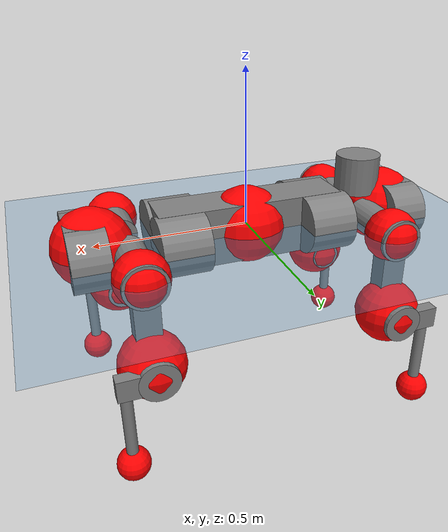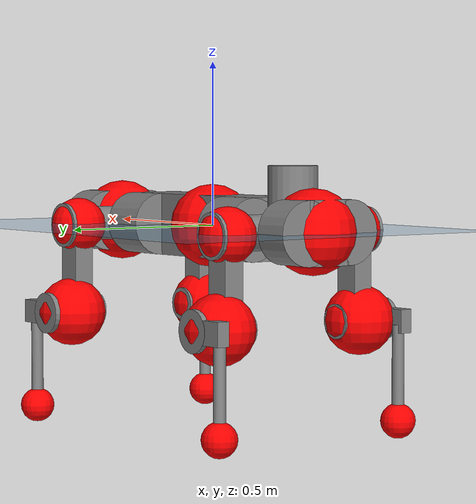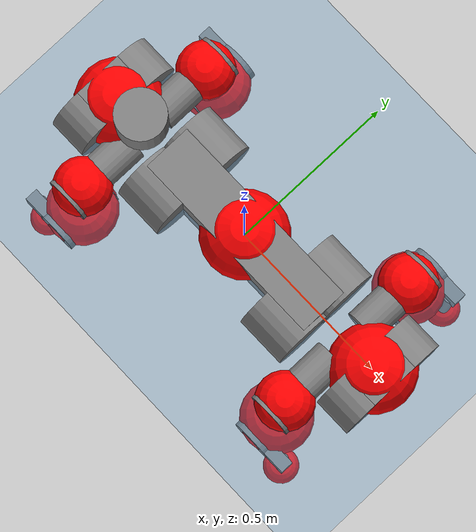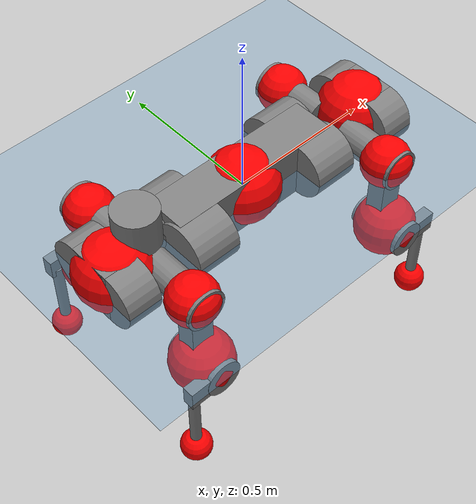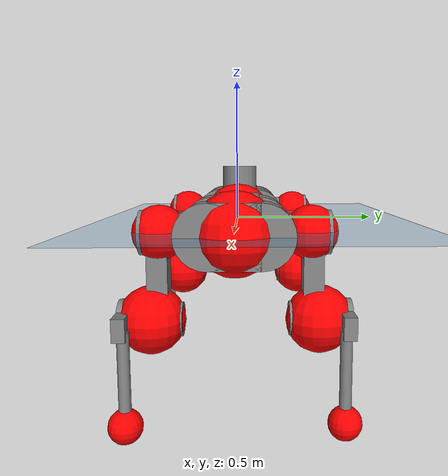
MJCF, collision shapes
<mujoco model="anymal_c">
  <compiler angle="radian" assetdir="assets" balanceinertia="true" inertiafromgeom="false"/>

  <option timestep="0.005" density="1.2" viscosity="2e-05"/>

  <size nkey="1"/>

  <visual>
    <quality shadowsize="8192"/>
    <map shadowclip="0.5"/>
  </visual>

  <default>
    <default class="/">
      <material specular="0" shininess="0.25"/>
      <geom contype="0" conaffinity="0" group="1" solref="-1000 -80"/>
      <site size="0.01 0.005 0.005" group="5"/>
      <general forcelimited="true" forcerange="-80 80" biastype="affine" gainprm="80" biasprm="0 -80 -2"/>
      <default class="anymal_c">
        <joint armature="0.01" damping="0.01" frictionloss="0.1"/>
        <default class="visual">
          <geom type="mesh" group="2"/>
          <default class="visual_zflip"/>
        </default>
        <default class="collision">
          <geom type="cylinder" group="3"/>
          <default class="foot">
            <geom size="0.03 0 0" type="sphere" condim="6" priority="1" friction="0.8 0.02 0.01" solimp="0.015 1 0.03"/>
          </default>
        </default>
      </default>
      <default class="reward_collision_sphere">
        <geom group="5" rgba="1 0 0 1"/>
      </default>
    </default>
  </default>

  <asset>
    <texture type="skybox" colorspace="auto" name="//unnamed_texture_0" builtin="gradient" rgb1="0.95 0.95 0.95" rgb2="0.95 0.95 0.95" width="100" height="600"/>
    <texture type="2d" colorspace="auto" name="texplane" builtin="checker" rgb1="0.345 0.575 0.748" rgb2="0.345 0.575 0.748" markrgb="1 1 1" width="512" height="512"/>
    <texture type="2d" colorspace="linear" name="base" file="base.png"/>
    <texture type="2d" colorspace="linear" name="top_shell" file="top_shell.png"/>
    <texture type="2d" colorspace="linear" name="bottom_shell" file="bottom_shell.png"/>
    <texture type="2d" colorspace="linear" name="remote" file="remote.png"/>
    <texture type="2d" colorspace="linear" name="hatch" file="hatch.png"/>
    <texture type="2d" colorspace="linear" name="handle" file="handle.png"/>
    <texture type="2d" colorspace="linear" name="face" file="face.png"/>
    <texture type="2d" colorspace="linear" name="battery" file="battery.png"/>
    <texture type="2d" colorspace="linear" name="lidar_cage" file="lidar_cage.png"/>
    <texture type="2d" colorspace="linear" name="depth_camera" file="depth_camera.png"/>
    <texture type="2d" colorspace="linear" name="wide_angle_camera" file="wide_angle_camera.png"/>
    <texture type="2d" colorspace="linear" name="lidar" file="lidar.png"/>
    <texture type="2d" colorspace="linear" name="drive" file="drive.png"/>
    <texture type="2d" colorspace="linear" name="hip_l" file="hip_l.png"/>
    <texture type="2d" colorspace="linear" name="shank_l" file="shank_l.png"/>
    <texture type="2d" colorspace="linear" name="foot" file="foot.png"/>
    <texture type="2d" colorspace="linear" name="thigh" file="thigh.png"/>
    <texture type="2d" colorspace="linear" name="shank_r" file="shank_r.png"/>
    <texture type="2d" colorspace="linear" name="hip_r" file="hip_r.png"/>
    <material name="MatPlane" class="/" texture="texplane" texuniform="true" texrepeat="2 2" specular="0.9" shininess="0.5"/>
    <material name="black_plastic" class="/" rgba="0.007 0.007 0.007 1"/>
    <material name="green" class="/" rgba="0.052 0.178 0.033 1"/>
    <material name="red" class="/" rgba="0.178 0.006 0.005 1"/>
    <material name="yellow" class="/" rgba="0.178 0.119 0.006 1"/>
    <material name="lwl" class="/" rgba="0.8 0.8 0.8 1"/>
    <material name="base" class="/" texture="base"/>
    <material name="top_shell" class="/" texture="top_shell"/>
    <material name="bottom_shell" class="/" texture="bottom_shell"/>
    <material name="hip_l" class="/" texture="hip_l"/>
    <material name="thigh" class="/" texture="thigh"/>
    <material name="shank_l" class="/" texture="shank_l"/>
    <material name="foot" class="/" texture="foot"/>
    <material name="hip_r" class="/" texture="hip_r"/>
    <material name="shank" class="/" texture="shank_r"/>
    <material name="hatch" class="/" texture="hatch"/>
    <material name="remote" class="/" texture="remote"/>
    <material name="handle" class="/" texture="handle"/>
    <material name="face" class="/" texture="face"/>
    <material name="depth_camera" class="/" texture="depth_camera"/>
    <material name="wide_angle_camera" class="/" texture="wide_angle_camera"/>
    <material name="battery" class="/" texture="battery"/>
    <material name="lidar_cage" class="/" texture="lidar_cage"/>
    <material name="lidar" class="/" texture="lidar"/>
    <material name="drive" class="/" texture="drive"/>
    <mesh name="base_0" class="/" file="base_0.obj"/>
    <mesh name="base_1" class="/" file="base_1.obj"/>
    <mesh name="base_2" class="/" file="base_2.obj"/>
    <mesh name="base_3" class="/" file="base_3.obj"/>
    <mesh name="base_4" class="/" file="base_4.obj"/>
    <mesh name="base_5" class="/" file="base_5.obj"/>
    <mesh name="top_shell" class="/" file="top_shell.obj"/>
    <mesh name="bottom_shell" class="/" file="bottom_shell.obj"/>
    <mesh name="remote" class="/" file="remote.obj"/>
    <mesh name="handle" class="/" file="handle.obj"/>
    <mesh name="face" class="/" file="face.obj"/>
    <mesh name="wide_angle_camera" class="/" file="wide_angle_camera.obj"/>
    <mesh name="depth_camera" class="/" file="depth_camera.obj"/>
    <mesh name="battery" class="/" file="battery.obj"/>
    <mesh name="lidar_cage" class="/" file="lidar_cage.obj"/>
    <mesh name="lidar" class="/" file="lidar.obj"/>
    <mesh name="drive" class="/" file="drive.obj"/>
    <mesh name="hip_l" class="/" file="hip_l.obj"/>
    <mesh name="thigh" class="/" file="thigh.obj"/>
    <mesh name="shank_l" class="/" file="shank_l.obj"/>
    <mesh name="foot" class="/" file="foot.obj"/>
    <mesh name="hip_r" class="/" file="hip_r.obj"/>
    <mesh name="hatch" class="/" file="hatch.obj"/>
    <mesh name="shank_r" class="/" file="shank_r.obj"/>
  </asset>

  <worldbody>
    <geom name="floor" class="/" size="100 100 0.125" type="plane" group="0" material="MatPlane"/>
    <light name="toplight_shadow" class="/" pos="0 0 5" dir="0.0990148 0.0990148 -0.990148" type="directional" ambient="0.04 0.04 0.04" diffuse="0.55 0.55 0.55" specular="0.12 0.12 0.12"/>
    <light name="toplight_fill" class="/" pos="0 0 5" dir="0.0990148 0.0990148 -0.990148" type="directional" castshadow="false" ambient="0.04 0.04 0.04" diffuse="0.3 0.3 0.3" specular="0.08 0.08 0.08"/>
    <body name="trunk" childclass="anymal_c" pos="-0.000728236 0.00268947 8.8256e-05" quat="0.999999 0.000129705 0.000647231 0.000906445">
      <inertial pos="0.00239963 -0.0012869 0.0476478" quat="0.498133 0.506302 0.503975 0.491458" mass="23.123" diaginertia="1.08444 1.04672 0.166001"/>
      <joint name="//unnamed_joint_0" type="free" armature="0" damping="0" frictionloss="0"/>
      <geom name="//unnamed_geom_1" class="visual" material="green" mesh="base_0"/>
      <geom name="//unnamed_geom_2" class="visual" material="yellow" mesh="base_1"/>
      <geom name="//unnamed_geom_3" class="visual" material="red" mesh="base_2"/>
      <geom name="//unnamed_geom_4" class="visual" material="black_plastic" mesh="base_3"/>
      <geom name="//unnamed_geom_5" class="visual" material="lwl" mesh="base_4"/>
      <geom name="//unnamed_geom_6" class="visual" material="base" mesh="base_5"/>
      <geom name="trunk_1" class="collision" size="0.306151 0.0738986 0.0950125" type="box"/>
      <geom name="trunk_2" class="collision" size="0.0950125 0.0765378" pos="0.242154 0.0773247 0" quat="0.707107 0 0.707107 0"/>
      <geom name="trunk_3" class="collision" size="0.0950125 0.0765378" pos="-0.242154 0.0773247 0" quat="0.707107 0 0.707107 0"/>
      <geom name="trunk_4" class="collision" size="0.0950125 0.0765378" pos="0.242154 -0.0773247 0" quat="0.707107 0 0.707107 0"/>
      <geom name="trunk_5" class="collision" size="0.0950125 0.0765378" pos="-0.242154 -0.0773247 0" quat="0.707107 0 0.707107 0"/>
      <geom name="//unnamed_geom_12" class="visual" material="top_shell" mesh="top_shell"/>
      <geom name="//unnamed_geom_13" class="visual" material="bottom_shell" mesh="bottom_shell"/>
      <geom name="//unnamed_geom_14" class="visual" material="remote" mesh="remote"/>
      <geom name="//unnamed_geom_15" class="visual" material="handle" mesh="handle"/>
      <geom name="//unnamed_geom_16" class="visual" pos="0.461484 0 0" quat="1 0 0 0" material="face" mesh="face"/>
      <geom name="trunk_6" class="collision" size="0.0580632 0.0738986 0.0950125" pos="0.522718 0 0" type="box"/>
      <geom name="//unnamed_geom_18" class="collision" size="0.0950125 0.0580632" pos="0.522718 0.0773247 0" quat="0.707107 0 0.707107 0"/>
      <geom name="//unnamed_geom_19" class="collision" size="0.0950125 0.0580632" pos="0.522718 -0.0773247 0" quat="0.707107 0 0.707107 0"/>
      <geom name="//unnamed_geom_20" class="visual" pos="0.513971 0 -0.0264651" quat="0.965926 0 0.258819 0" material="depth_camera" mesh="depth_camera"/>
      <geom name="//unnamed_geom_21" class="visual" pos="0.571149 0 0.0142079" material="wide_angle_camera" mesh="wide_angle_camera"/>
      <geom name="//unnamed_geom_22" class="visual_zflip" pos="-0.461484 0 0" quat="0 0 0 1" material="face" mesh="face"/>
      <geom name="trunk_7" class="collision" size="0.0580632 0.0738986 0.0950125" pos="-0.522718 0 0" quat="0 0 0 1" type="box"/>
      <geom name="//unnamed_geom_24" class="collision" size="0.0950125 0.0580632" pos="-0.522718 -0.0773247 0" quat="0 -0.707107 0 0.707107"/>
      <geom name="//unnamed_geom_25" class="collision" size="0.0950125 0.0580632" pos="-0.522718 0.0773247 0" quat="0 -0.707107 0 0.707107"/>
      <geom name="//unnamed_geom_26" class="visual" pos="-0.513971 0 -0.0264651" quat="0 -0.258819 0 0.965926" material="depth_camera" mesh="depth_camera"/>
      <geom name="//unnamed_geom_27" class="visual_zflip" pos="-0.571149 0 0.0142079" quat="0 0 0 1" material="wide_angle_camera" mesh="wide_angle_camera"/>
      <geom name="//unnamed_geom_28" class="visual" material="battery" mesh="battery"/>
      <geom name="//unnamed_geom_29" class="visual" pos="0 0.0843396 0.0288195" quat="0.683013 -0.183013 0.183013 0.683013" material="depth_camera" mesh="depth_camera"/>
      <geom name="//unnamed_geom_30" class="visual" pos="0 -0.0843396 0.0288195" quat="0.683013 0.183013 0.183013 -0.683013" material="depth_camera" mesh="depth_camera"/>
      <geom name="//unnamed_geom_31" class="visual" pos="-0.405259 0 0.0697583" quat="1 0 0 0" material="lidar_cage" mesh="lidar_cage"/>
      <geom name="trunk_8" class="collision" size="0.0738986 0.0633416" pos="-0.405259 0 0.126704"/>
      <geom name="//unnamed_geom_33" class="visual" pos="-0.405259 -3.42239e-06 0.134961" quat="0.707107 0 0 -0.707107" material="lidar" mesh="lidar"/>
      <geom name="//unnamed_geom_34" class="visual" pos="0.333894 0.114827 2.68319e-09" quat="0.258819 0.965926 0 0" material="drive" mesh="drive"/>
      <geom name="//unnamed_geom_35" class="visual" pos="0.333894 -0.114827 -2.68319e-09" quat="0.258819 -0.965926 0 0" material="drive" mesh="drive"/>
      <geom name="//unnamed_geom_36" class="visual" pos="-0.333894 0.114827 -2.68319e-09" quat="0 0 0.965926 -0.258819" material="drive" mesh="drive"/>
      <geom name="//unnamed_geom_37" class="visual" pos="-0.333894 -0.114827 2.68319e-09" quat="0 0 -0.965926 -0.258819" material="drive" mesh="drive"/>
      <geom name="//unnamed_geom_38" class="visual" pos="0.129149 0 0.0692838" quat="1 0 0 0" material="hatch" mesh="hatch"/>
      <geom name="//unnamed_geom_39" class="reward_collision_sphere" size="0.126683"/>
      <geom name="//unnamed_geom_40" class="reward_collision_sphere" size="0.126683" pos="0.501008 0 0"/>
      <geom name="//unnamed_geom_41" class="reward_collision_sphere" size="0.126683" pos="-0.501008 0 0"/>
      <site name="imu" pos="0.289212 0.00388152 0.0536334" size="0.0105569"/>
      <camera name="track" pos="0 -2.20928 0" quat="0.707107 0.707107 0 0" mode="trackcom"/>
      <camera name="ego_camera" pos="0.501008 0 -0.0379637" quat="-0.5 -0.5 0.5 0.5"/>
      <body name="LF_HIP" pos="0.335483 0.113857 -0.002813" quat="0.258712 0.965955 4.832e-05 7.6609e-06">
        <inertial pos="0.0645617 -0.0193209 -0.00701445" quat="-0.128561 0.708605 -0.134532 0.680627" mass="3.21705" diaginertia="0.00986434 0.00805141 0.00253109"/>
        <joint name="LF_HAA" pos="0 0 0" axis="0.999883 0.00399074 0.0147682" stiffness="0.00362613" range="-0.720945 0.494386" armature="0.0116011" damping="0.021103" frictionloss="0.118637"/>
        <geom name="//unnamed_geom_42" class="visual" pos="0 0.00015784 -2.59251e-05" quat="0.258819 -0.965926 0 0" material="hip_l" mesh="hip_l"/>
        <geom name="//unnamed_geom_43" class="visual" pos="0.0666897 -0.0806388 -0.0454063" quat="0.183013 -0.683013 0.683013 0.183013" material="drive" mesh="drive"/>
        <geom name="//unnamed_geom_44" class="collision" size="0.0527847 0.0738986" pos="0.0666897 -0.0132113 -0.00655348" quat="-0.353553 -0.612372 0.612372 -0.353553"/>
        <body name="LF_THIGH" pos="0.0650294 -0.0796056 -0.0411015" quat="0.182621 -0.682509 0.683785 0.182399">
          <inertial pos="0.0350011 -0.000112051 -0.230775" quat="0.992844 -0.00953677 -0.0904464 0.0773907" mass="3.4676" diaginertia="0.0494627 0.0475275 0.00314819"/>
          <joint name="LF_HFE" pos="0 0 0" axis="0.999896 -0.0113399 -0.00885547" range="-3.09199 3.14145" armature="0.0106112" damping="0" frictionloss="0.0945494"/>
          <geom name="//unnamed_geom_45" class="visual" pos="0.000173319 2.73109e-07 0" quat="0.707107 0 0 -0.707107" material="thigh" mesh="thigh"/>
          <geom name="//unnamed_geom_46" class="collision" size="0.0686201 0.0422278" pos="0.044534 0 0" quat="0.5 0.5 -0.5 -0.5"/>
          <geom name="//unnamed_geom_47" class="collision" size="0.0395885 0.0316708 0.149184" pos="0.0334005 0 -0.13412" quat="0.707107 0 0 -0.707107" type="box"/>
          <geom name="//unnamed_geom_48" class="visual" pos="0.111669 0 -0.270491" quat="1 0 0 0" material="drive" mesh="drive"/>
          <geom name="//unnamed_geom_49" class="collision" size="0.0527847 0.0738986" pos="0.0337345 0 -0.270491" quat="0.707107 0 0.707107 0"/>
          <geom name="//unnamed_geom_50" class="reward_collision_sphere" size="0.0844555" pos="0.0278338 0 0"/>
          <body name="LF_SHANK" pos="0.111067 0.00251156 -0.273217" quat="1 0.000296598 0.00011142 0.00042239">
            <inertial pos="0.00862177 -0.0697223 -0.0767875" quat="0.993307 -0.112455 -0.00729142 -0.0253426" mass="0.725986" diaginertia="0.0176342 0.0154951 0.000883542"/>
            <joint name="LF_KFE" pos="0 0 0" axis="0.999875 -0.0157105 0.00155513" range="-3.15421 3.11041" armature="0.0102275" damping="0.00469655" frictionloss="0.10742"/>
            <geom name="//unnamed_geom_51" class="visual" pos="5.65154e-05 0.000301343 0" quat="0.707107 0 0 -0.707107" material="shank_l" mesh="shank_l"/>
            <geom name="LF_kfe_act" class="collision" size="0.0633416 0.0211139" pos="0.022267 0 0" quat="0.5 0.5 -0.5 -0.5"/>
            <geom name="//unnamed_geom_53" class="collision" size="0.0607013 0.0356297 0.0200582" pos="0.022267 -0.0635156 0" quat="0.5 0.5 -0.5 -0.5" type="box"/>
            <geom name="//unnamed_geom_54" class="visual" pos="0.0145292 -0.0970559 -0.320765" quat="0.382683 0 0 -0.92388" material="foot" mesh="foot"/>
            <geom name="LF_calf" class="collision" size="0.0184746 0.149119" pos="0.0145292 -0.097153 -0.160382" quat="0.707107 0 0 -0.707107"/>
            <geom name="LF_foot" class="foot" size="0.0335624" pos="0.0145292 -0.097153 -0.29941" quat="0.707107 0 0 -0.707107"/>
            <geom name="//unnamed_geom_57" class="reward_collision_sphere" size="0.105569" pos="-0.0556675 0 0"/>
            <geom name="//unnamed_geom_58" class="reward_collision_sphere" size="0.0527847" pos="0.0145292 -0.097153 -0.29941"/>
            <site name="LF_foot" class="foot" pos="0.0145292 -0.097153 -0.29941" quat="0.707107 0 0 -0.707107" size="0.0105569"/>
          </body>
        </body>
      </body>
      <body name="RF_HIP" pos="0.336377 -0.117658 -7.4641e-05" quat="0.259206 -0.965822 -3.0235e-05 -0.000300216">
        <inertial pos="0.0610302 0.019996 -0.00670796" quat="0.132037 0.676339 0.120916 0.714501" mass="3.24779" diaginertia="0.00984986 0.00776351 0.0024813"/>
        <joint name="RF_HAA" pos="0 0 0" axis="0.999998 -0.000430998 -0.00208929" range="-0.464562 0.740844" armature="0.0104123" damping="0.0136721" frictionloss="0.105628"/>
        <geom name="//unnamed_geom_59" class="visual" pos="0 -0.000157839 -2.5925e-05" quat="0.258819 0.965926 0 0" material="hip_r" mesh="hip_r"/>
        <geom name="//unnamed_geom_60" class="visual" pos="0.0666897 0.0806388 -0.0454063" quat="0.183013 0.683013 0.683013 -0.183013" material="drive" mesh="drive"/>
        <geom name="//unnamed_geom_61" class="collision" size="0.0527847 0.0738986" pos="0.0666897 0.0132113 -0.00655348" quat="-0.353553 0.612372 0.612372 0.353553"/>
        <body name="RF_THIGH" pos="0.0664814 0.0783998 -0.0383118" quat="0.183363 0.682881 0.683166 -0.18258">
          <inertial pos="0.0319734 -0.00314857 -0.230609" quat="0.992933 -0.00625343 -0.078795 0.0885193" mass="3.72316" diaginertia="0.0519608 0.0516813 0.00333991"/>
          <joint name="RF_HFE" pos="0 0 0" axis="0.999935 -0.011112 -0.00259097" stiffness="0.0151174" range="-3.16123 3.18849" armature="0.00912963" damping="0.00754355" frictionloss="0.114925"/>
          <geom name="//unnamed_geom_62" class="visual" pos="0.000173319 2.73109e-07 0" quat="0.707107 0 0 -0.707107" material="thigh" mesh="thigh"/>
          <geom name="//unnamed_geom_63" class="collision" size="0.0686201 0.0422278" pos="0.044534 0 0" quat="0.5 0.5 0.5 0.5"/>
          <geom name="//unnamed_geom_64" class="collision" size="0.0395885 0.0316708 0.149184" pos="0.0334005 0 -0.13412" quat="0.707107 0 0 0.707107" type="box"/>
          <geom name="//unnamed_geom_65" class="visual" pos="0.111669 0 -0.270491" quat="1 0 0 0" material="drive" mesh="drive"/>
          <geom name="//unnamed_geom_66" class="collision" size="0.0527847 0.0738986" pos="0.0337345 0 -0.270491" quat="0.707107 0 0.707107 0"/>
          <geom name="//unnamed_geom_67" class="reward_collision_sphere" size="0.0844555" pos="0.0278338 0 0"/>
          <body name="RF_SHANK" pos="0.111988 0.00295793 -0.270534" quat="0.999999 0.000273261 0.000984016 -0.000531152">
            <inertial pos="0.00283562 0.0660574 -0.0764964" quat="0.993655 0.110842 -0.0015947 0.0190046" mass="0.681525" diaginertia="0.0176178 0.0148969 0.000824045"/>
            <joint name="RF_KFE" pos="0 0 0" axis="0.999912 -0.0128901 -0.00317216" range="-3.10939 3.13924" armature="0.0112193" damping="0.00243588" frictionloss="0.10267"/>
            <geom name="//unnamed_geom_68" class="visual" pos="5.65151e-05 -0.000301342 0" quat="0.707107 0 0 0.707107" material="shank" mesh="shank_r"/>
            <geom name="RF_kfe_act" class="collision" size="0.0633416 0.0211139" pos="0.022267 0 0" quat="0.5 0.5 0.5 0.5"/>
            <geom name="//unnamed_geom_70" class="collision" size="0.0607013 0.0356297 0.0200582" pos="0.022267 0.0635156 0" quat="0.5 0.5 0.5 0.5" type="box"/>
            <geom name="//unnamed_geom_71" class="visual" pos="0.0145292 0.0970559 -0.320765" quat="0.382683 0 0 0.92388" material="foot" mesh="foot"/>
            <geom name="RF_calf" class="collision" size="0.0184746 0.149119" pos="0.0145292 0.097153 -0.160382" quat="0.707107 0 0 0.707107"/>
            <geom name="RF_foot" class="foot" size="0.0290996" pos="0.0145292 0.097153 -0.29941" quat="0.707107 0 0 0.707107"/>
            <geom name="//unnamed_geom_74" class="reward_collision_sphere" size="0.105569" pos="-0.0556675 0 0"/>
            <geom name="//unnamed_geom_75" class="reward_collision_sphere" size="0.0527847" pos="0.0145292 0.097153 -0.29941"/>
            <site name="RF_foot" class="foot" pos="0.0145292 0.097153 -0.29941" quat="0.707107 0 0 0.707107" size="0.0105569"/>
          </body>
        </body>
      </body>
      <body name="LH_HIP" pos="-0.337177 0.115522 -0.00110587" quat="0.00055222 -0.000640873 0.965834 -0.25916">
        <inertial pos="0.0615556 0.0198345 -0.00812284" quat="0.134924 0.679698 0.129685 0.709216" mass="3.18433" diaginertia="0.00976679 0.00817458 0.00255331"/>
        <joint name="LH_HAA" pos="0 0 0" axis="0.9999 0.012053 -0.00733702" range="-0.465619 0.776999" armature="0.0106373" damping="0.00820344" frictionloss="0.0915365"/>
        <geom name="//unnamed_geom_76" class="visual" pos="0 -0.000157839 -2.5925e-05" quat="-0.258819 -0.965926 0 0" material="hip_r" mesh="hip_r"/>
        <geom name="//unnamed_geom_77" class="visual" pos="0.0666897 0.0806388 -0.0454063" quat="0.183013 0.683013 0.683013 -0.183013" material="drive" mesh="drive"/>
        <geom name="//unnamed_geom_78" class="collision" size="0.0527847 0.0738986" pos="0.0666897 0.0132113 -0.00655348" quat="-0.353553 0.612372 0.612372 0.353553"/>
        <body name="LH_THIGH" pos="0.068264 0.0831315 -0.040572" quat="0.184233 0.682871 0.682583 -0.183919">
          <inertial pos="0.0363582 -0.00192302 -0.233287" quat="0.992515 -0.00544725 -0.0803236 0.091833" mass="3.75193" diaginertia="0.0514998 0.0496402 0.00337511"/>
          <joint name="LH_HFE" pos="0 0 0" axis="0.999988 -0.00490945 -0.000498853" range="-3.11458 3.17416" armature="0.00977629" damping="0.0216881" frictionloss="0.10517"/>
          <geom name="//unnamed_geom_79" class="visual" pos="0.000173319 2.73109e-07 0" quat="0.707107 0 0 -0.707107" material="thigh" mesh="thigh"/>
          <geom name="//unnamed_geom_80" class="collision" size="0.0686201 0.0422278" pos="0.044534 0 0" quat="0.5 0.5 -0.5 -0.5"/>
          <geom name="//unnamed_geom_81" class="collision" size="0.0395885 0.0316708 0.149184" pos="0.0334005 0 -0.13412" quat="0.707107 0 0 -0.707107" type="box"/>
          <geom name="//unnamed_geom_82" class="visual" pos="0.111669 0 -0.270491" quat="1 0 0 0" material="drive" mesh="drive"/>
          <geom name="//unnamed_geom_83" class="collision" size="0.0527847 0.0738986" pos="0.0337345 0 -0.270491" quat="0.707107 0 0.707107 0"/>
          <geom name="//unnamed_geom_84" class="reward_collision_sphere" size="0.0844555" pos="0.0278338 0 0"/>
          <body name="LH_SHANK" pos="0.110076 -0.000184271 -0.268002" quat="0.999999 0.000348738 -0.00103132 0.000694934">
            <inertial pos="0.00657112 0.0675142 -0.0798766" quat="0.993328 0.11098 0.0077606 0.0303829" mass="0.696357" diaginertia="0.0174528 0.0145979 0.000846328"/>
            <joint name="LH_KFE" pos="0 0 0" axis="0.999926 0.00455775 0.0113099" range="-3.10527 3.10557" armature="0.0117471" damping="0.00461171" frictionloss="0.102665"/>
            <geom name="//unnamed_geom_85" class="visual" pos="5.65151e-05 -0.000301342 0" quat="-0.707107 0 0 -0.707107" material="shank" mesh="shank_r"/>
            <geom name="LH_kfe_act" class="collision" size="0.0633416 0.0211139" pos="0.022267 0 0" quat="0.5 0.5 -0.5 -0.5"/>
            <geom name="//unnamed_geom_87" class="collision" size="0.0607013 0.0356297 0.0200582" pos="0.022267 0.0635156 0" quat="0.5 0.5 -0.5 -0.5" type="box"/>
            <geom name="//unnamed_geom_88" class="visual" pos="0.0145292 0.0970559 -0.320765" quat="-0.382683 0 0 -0.92388" material="foot" mesh="foot"/>
            <geom name="LH_calf" class="collision" size="0.0184746 0.149119" pos="0.0145292 0.097153 -0.160382" quat="0.707107 0 0 -0.707107"/>
            <geom name="LH_foot" class="foot" size="0.0315781" pos="0.0145292 0.097153 -0.29941" quat="0.707107 0 0 -0.707107"/>
            <geom name="//unnamed_geom_91" class="reward_collision_sphere" size="0.105569" pos="-0.0556675 0 0"/>
            <geom name="//unnamed_geom_92" class="reward_collision_sphere" size="0.0527847" pos="0.0145292 0.097153 -0.29941"/>
            <site name="LH_foot" class="foot" pos="0.0145292 0.097153 -0.29941" quat="0.707107 0 0 -0.707107" size="0.0105569"/>
          </body>
        </body>
      </body>
      <body name="RH_HIP" pos="-0.332077 -0.111495 0.000445514" quat="-0.000927605 -0.000370894 -0.966055 -0.258335">
        <inertial pos="0.0641015 -0.0146482 -0.00787264" quat="-0.130307 0.706412 -0.128585 0.683716" mass="3.20305" diaginertia="0.0100645 0.00807811 0.00253671"/>
        <joint name="RH_HAA" pos="0 0 0" axis="0.999943 0.0104599 -0.00206381" range="-0.713277 0.546945" armature="0.00918166" damping="0.022718" frictionloss="0.100741"/>
        <geom name="//unnamed_geom_93" class="visual" pos="0 0.00015784 -2.59251e-05" quat="-0.258819 0.965926 0 0" material="hip_l" mesh="hip_l"/>
        <geom name="//unnamed_geom_94" class="visual" pos="0.0666897 -0.0806388 -0.0454063" quat="-0.183013 0.683013 -0.683013 -0.183013" material="drive" mesh="drive"/>
        <geom name="//unnamed_geom_95" class="collision" size="0.0527847 0.0738986" pos="0.0666897 -0.0132113 -0.00655348" quat="0.353553 0.612372 -0.612372 0.353553"/>
        <body name="RH_THIGH" pos="0.0678726 -0.0814371 -0.0408253" quat="-0.183284 0.682013 -0.683657 -0.184059">
          <inertial pos="0.0370424 -8.08938e-05 -0.230385" quat="0.991665 -0.00994696 -0.0927373 0.0888911" mass="3.47313" diaginertia="0.0516264 0.0486963 0.00307339"/>
          <joint name="RH_HFE" pos="0 0 0" axis="0.999921 -0.000678312 -0.0125784" range="-3.15826 3.19908" armature="0.0105308" damping="0.013326" frictionloss="0.0927244"/>
          <geom name="//unnamed_geom_96" class="visual" pos="0.000173319 2.73109e-07 0" quat="0.707107 0 0 -0.707107" material="thigh" mesh="thigh"/>
          <geom name="//unnamed_geom_97" class="collision" size="0.0686201 0.0422278" pos="0.044534 0 0" quat="0.5 0.5 0.5 0.5"/>
          <geom name="//unnamed_geom_98" class="collision" size="0.0395885 0.0316708 0.149184" pos="0.0334005 0 -0.13412" quat="0.707107 0 0 0.707107" type="box"/>
          <geom name="//unnamed_geom_99" class="visual" pos="0.111669 0 -0.270491" quat="1 0 0 0" material="drive" mesh="drive"/>
          <geom name="//unnamed_geom_100" class="collision" size="0.0527847 0.0738986" pos="0.0337345 0 -0.270491" quat="0.707107 0 0.707107 0"/>
          <geom name="//unnamed_geom_101" class="reward_collision_sphere" size="0.0844555" pos="0.0278338 0 0"/>
          <body name="RH_SHANK" pos="0.108799 0.00146698 -0.269829" quat="1 3.45772e-05 3.53511e-06 0.000117599">
            <inertial pos="0.00671391 -0.0653614 -0.0781384" quat="0.993022 -0.115464 -0.00110763 -0.0239507" mass="0.688093" diaginertia="0.016978 0.0150586 0.000860426"/>
            <joint name="RH_KFE" pos="0 0 0" axis="1 -1.19868e-05 -0.000284707" range="-3.17546 3.10672" armature="0.0107756" damping="0.0179847" frictionloss="0.0960702"/>
            <geom name="//unnamed_geom_102" class="visual" pos="5.65154e-05 0.000301343 0" quat="0.707107 0 0 -0.707107" material="shank_l" mesh="shank_l"/>
            <geom name="RH_kfe_act" class="collision" size="0.0633416 0.0211139" pos="0.022267 0 0" quat="0.5 0.5 0.5 0.5"/>
            <geom name="//unnamed_geom_104" class="collision" size="0.0607013 0.0356297 0.0200582" pos="0.022267 -0.0635156 0" quat="0.5 0.5 0.5 0.5" type="box"/>
            <geom name="//unnamed_geom_105" class="visual" pos="0.0145292 -0.0970559 -0.320765" quat="0.382683 0 0 -0.92388" material="foot" mesh="foot"/>
            <geom name="RH_calf" class="collision" size="0.0184746 0.149119" pos="0.0145292 -0.097153 -0.160382" quat="0.707107 0 0 0.707107"/>
            <geom name="RH_foot" class="foot" size="0.0295832" pos="0.0145292 -0.097153 -0.29941" quat="0.707107 0 0 0.707107"/>
            <geom name="//unnamed_geom_108" class="reward_collision_sphere" size="0.105569" pos="-0.0556675 0 0"/>
            <geom name="//unnamed_geom_109" class="reward_collision_sphere" size="0.0527847" pos="0.0145292 -0.097153 -0.29941"/>
            <site name="RH_foot" class="foot" pos="0.0145292 -0.097153 -0.29941" quat="0.707107 0 0 0.707107" size="0.0105569"/>
          </body>
        </body>
      </body>
    </body>
  </worldbody>

  <contact>
    <pair class="/" geom1="floor" geom2="LF_foot" name="//unnamed_contact_0"/>
    <pair class="/" geom1="floor" geom2="RF_foot" name="//unnamed_contact_1"/>
    <pair class="/" geom1="floor" geom2="LH_foot" name="//unnamed_contact_2"/>
    <pair class="/" geom1="floor" geom2="RH_foot" name="//unnamed_contact_3"/>
  </contact>

  <actuator>
    <general name="LF_HAA" class="/" joint="LF_HAA" forcerange="-86.5526 86.5526" gainprm="84.5637" biasprm="0 -84.5637 -2.29793"/>
    <general name="LF_HFE" class="/" joint="LF_HFE" forcerange="-84.5628 84.5628" gainprm="84.5637" biasprm="0 -84.5637 -2.29793"/>
    <general name="LF_KFE" class="/" joint="LF_KFE" forcerange="-93.1155 93.1155" gainprm="84.5637" biasprm="0 -84.5637 -2.29793"/>
    <general name="RF_HAA" class="/" joint="RF_HAA" forcerange="-83.9573 83.9573" gainprm="84.5637" biasprm="0 -84.5637 -2.29793"/>
    <general name="RF_HFE" class="/" joint="RF_HFE" forcerange="-91.6639 91.6639" gainprm="84.5637" biasprm="0 -84.5637 -2.29793"/>
    <general name="RF_KFE" class="/" joint="RF_KFE" forcerange="-90.9049 90.9049" gainprm="84.5637" biasprm="0 -84.5637 -2.29793"/>
    <general name="LH_HAA" class="/" joint="LH_HAA" forcerange="-86.196 86.196" gainprm="84.5637" biasprm="0 -84.5637 -2.29793"/>
    <general name="LH_HFE" class="/" joint="LH_HFE" forcerange="-90.4725 90.4725" gainprm="84.5637" biasprm="0 -84.5637 -2.29793"/>
    <general name="LH_KFE" class="/" joint="LH_KFE" forcerange="-78.2263 78.2263" gainprm="84.5637" biasprm="0 -84.5637 -2.29793"/>
    <general name="RH_HAA" class="/" joint="RH_HAA" forcerange="-86.8492 86.8492" gainprm="84.5637" biasprm="0 -84.5637 -2.29793"/>
    <general name="RH_HFE" class="/" joint="RH_HFE" forcerange="-94.0612 94.0612" gainprm="84.5637" biasprm="0 -84.5637 -2.29793"/>
    <general name="RH_KFE" class="/" joint="RH_KFE" forcerange="-92.9208 92.9208" gainprm="84.5637" biasprm="0 -84.5637 -2.29793"/>
  </actuator>

  <sensor>
    <gyro site="imu" name="imu_angular_velocity"/>
    <velocimeter site="imu" name="imu_linear_velocity"/>
    <framelinvel objtype="site" objname="LF_foot" name="LF_foot_global_linear_velocity"/>
    <framelinvel objtype="site" objname="RF_foot" name="RF_foot_global_linear_velocity"/>
    <framelinvel objtype="site" objname="LH_foot" name="LH_foot_global_linear_velocity"/>
    <framelinvel objtype="site" objname="RH_foot" name="RH_foot_global_linear_velocity"/>
  </sensor>

  <keyframe>
    <key name="home" qpos="0 0 0.55 1 0 0 0 0 0.4 -0.8 0 -0.4 0.8 0 -0.4 0.8 0 0.4 -0.8"/>
  </keyframe>
</mujoco>
